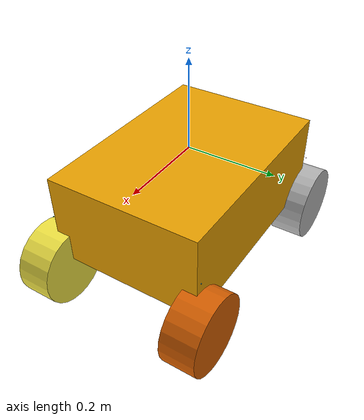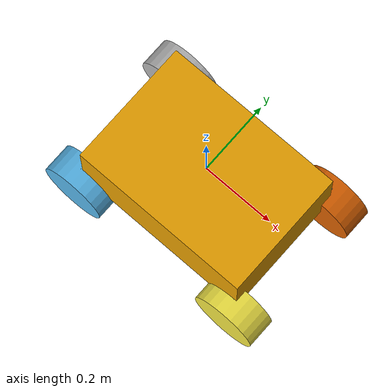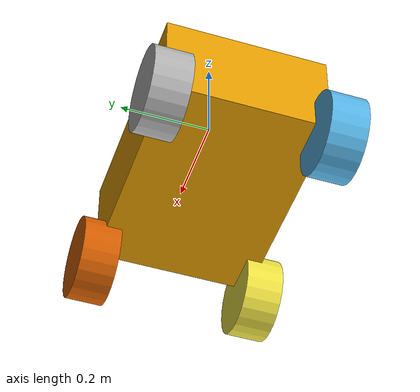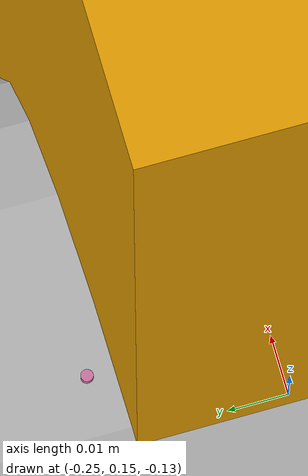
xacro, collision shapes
<?xml version="1.0" encoding="utf-8"?>
<!--
  ranger_mini_v3_sim.xacro
  Top-level xacro for Gazebo Harmonic simulation. Layers
  ros2_control hardware interfaces and the gz_ros2_control
  plugin onto the kinematics-only description package.
-->
<robot name="ranger_mini_v3" xmlns:xacro="http://ros.org/wiki/xacro">

  <xacro:arg name="controller_yaml" default=""/>

  <!-- The kinematic description, untouched. -->
  <xacro:include filename="$(find ranger_mini_v3_description)/urdf/ranger_mini_v3.xacro"/>

  <!--
    Hardware interfaces.
    Steering joints: position interface (commanded by Phase 4 node).
    Wheel joints:    velocity interface (commanded by Phase 4 node).
  -->
  <ros2_control name="ranger_mini_v3_gz_system" type="system">
    <hardware>
      <plugin>gz_ros2_control/GazeboSimSystem</plugin>
    </hardware>

    <xacro:macro name="steering_iface" params="prefix">
      <joint name="${prefix}_steering_joint">
        <command_interface name="position">
          <param name="min">-2.1</param>
          <param name="max"> 2.1</param>
        </command_interface>
        <state_interface name="position"/>
        <state_interface name="velocity"/>
      </joint>
    </xacro:macro>

    <xacro:macro name="wheel_iface" params="prefix">
      <joint name="${prefix}_wheel">
        <command_interface name="velocity">
          <param name="min">-30.0</param>
          <param name="max"> 30.0</param>
        </command_interface>
        <state_interface name="position"/>
        <state_interface name="velocity"/>
      </joint>
    </xacro:macro>

    <xacro:steering_iface prefix="fl"/>
    <xacro:steering_iface prefix="fr"/>
    <xacro:steering_iface prefix="rl"/>
    <xacro:steering_iface prefix="rr"/>

    <xacro:wheel_iface prefix="fl"/>
    <xacro:wheel_iface prefix="fr"/>
    <xacro:wheel_iface prefix="rl"/>
    <xacro:wheel_iface prefix="rr"/>
  </ros2_control>

  <gazebo>
    <plugin filename="gz_ros2_control-system" name="gz_ros2_control::GazeboSimROS2ControlSystem">
      <parameters>$(arg controller_yaml)</parameters>
    </plugin>
  </gazebo>

</robot>

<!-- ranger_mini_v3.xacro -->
<robot name="ranger_mini_v3" xmlns:xacro="http://ros.org/wiki/xacro">

  <xacro:property name="wheelbase_half" value="0.247"/>
  <xacro:property name="track_half"     value="0.182"/>
  <xacro:property name="steer_z"        value="-0.1"/>
  <xacro:property name="wheel_drop"     value="-0.12"/>
  <xacro:property name="wheel_radius"   value="0.09"/>
  <xacro:property name="wheel_width"    value="0.08"/>
  <xacro:property name="wheel_mass"     value="8.0"/>
  <xacro:property name="steer_mass"     value="1.0"/>
  <xacro:property name="steer_limit"    value="2.1"/>
  <xacro:property name="steer_effort"   value="5.0"/>
  <xacro:property name="steer_vel"      value="6.28"/>
  <xacro:property name="mesh_pkg"       value="package://ranger_mini_v3_description/meshes"/>

  <!-- ============================================================
       Base link
       ============================================================ -->
  <link name="base_link">
    <inertial>
      <origin xyz="-0.0242698 -0.0030308 0.0544267" rpy="0 0 0"/>
      <mass value="10.0"/>
      <inertia ixx="0.1354" ixy="0.0" ixz="0.0"
               iyy="0.2417" iyz="0.0" izz="0.3085"/>
    </inertial>
    <visual>
      <origin xyz="0 0 0" rpy="0 0 0"/>
      <geometry>
        <mesh filename="${mesh_pkg}/ranger_base.dae" scale="1000 1000 1000"/>
      </geometry>
    </visual>
    <collision>
      <origin xyz="0 0 -0.1" rpy="0 0 0"/>
      <geometry>
        <box size="0.5 0.35 0.2"/>
      </geometry>
    </collision>
  </link>

  <!-- A common nav convention: base_footprint at ground level under base_link.
       Useful for nav2 and TF consumers that expect it. -->
  <link name="base_footprint"/>
  <joint name="base_footprint_joint" type="fixed">
    <parent link="base_link"/>
    <child  link="base_footprint"/>
    <origin xyz="0 0 ${steer_z + wheel_drop - wheel_radius}" rpy="0 0 0"/>
  </joint>

  <!-- ============================================================
       Macros: one steering hub + one drive wheel per corner.
       ============================================================ -->

  <!-- Steering hub (revolute joint attached to base_link). -->
  <xacro:macro name="steering_hub" params="prefix x y mesh_yaw">
    <link name="${prefix}_steering_wheel_link">
      <inertial>
        <origin xyz="0 0 0.0437" rpy="0 0 0"/>
        <mass value="${steer_mass}"/>
        <inertia ixx="0.006363" ixy="0.0" ixz="0.0"
                 iyy="0.006363" iyz="0.0" izz="0.010465"/>
      </inertial>
      <visual>
        <origin xyz="0 0 0" rpy="0 0 ${mesh_yaw}"/>
        <geometry>
          <mesh filename="${mesh_pkg}/steering_wheel.dae" scale="10 10 10"/>
        </geometry>
      </visual>
      <collision>
        <origin xyz="0 0 0" rpy="0 0 0"/>
        <geometry>
          <cylinder radius="0.001" length="0.001"/>
        </geometry>
      </collision>
    </link>

    <joint name="${prefix}_steering_joint" type="revolute">
      <origin xyz="${x} ${y} ${steer_z}" rpy="0 0 0"/>
      <parent link="base_link"/>
      <child  link="${prefix}_steering_wheel_link"/>
      <!-- Original used axis (0,0,-1); we keep that so positive command =
           CW seen from above, matching the real-driver kinematic model. -->
      <axis xyz="0 0 1"/>
      <limit effort="${steer_effort}" velocity="${steer_vel}"
             lower="${-steer_limit}" upper="${steer_limit}"/>
      <dynamics damping="0.1" friction="0.0"/>
    </joint>
  </xacro:macro>

  <!-- Drive wheel (continuous joint hanging off the steering hub). -->
  <xacro:macro name="drive_wheel" params="prefix mesh_roll">
    <link name="${prefix}_wheel_link">
      <inertial>
        <origin xyz="0 0 0" rpy="0 0 0"/>
        <mass value="${wheel_mass}"/>
        <inertia ixx="0.02047" ixy="0.0" ixz="0.0"
                 iyy="0.02047" iyz="0.0" izz="0.0324"/>
      </inertial>
      <visual>
        <origin xyz="0 0 0" rpy="${mesh_roll} 0 0"/>
        <geometry>
          <mesh filename="${mesh_pkg}/wheel_v3.dae" scale="10 10 10"/>
        </geometry>
      </visual>
      <collision>
        <origin xyz="0 0 -0.005" rpy="1.5707963 0 0"/>
        <geometry>
          <cylinder length="${wheel_width}" radius="${wheel_radius}"/>
        </geometry>
      </collision>
    </link>

    <joint name="${prefix}_wheel" type="continuous">
      <origin xyz="0 0 ${wheel_drop}" rpy="0 0 0"/>
      <parent link="${prefix}_steering_wheel_link"/>
      <child  link="${prefix}_wheel_link"/>
      <axis xyz="0 1 0"/>
      <dynamics damping="0.05" friction="0.0"/>
    </joint>
  </xacro:macro>

  <!-- Front-Right -->
  <xacro:steering_hub prefix="fr" x="${ wheelbase_half}" y="${-track_half}" mesh_yaw="0"/>
  <xacro:drive_wheel  prefix="fr" mesh_roll="3.14"/>

  <!-- Front-Left -->
  <xacro:steering_hub prefix="fl" x="${ wheelbase_half}" y="${ track_half}" mesh_yaw="3.14"/>
  <xacro:drive_wheel  prefix="fl" mesh_roll="0"/>

  <!-- Rear-Left -->
  <xacro:steering_hub prefix="rl" x="${-wheelbase_half}" y="${ track_half}" mesh_yaw="3.14"/>
  <xacro:drive_wheel  prefix="rl" mesh_roll="0"/>

  <!-- Rear-Right  (FIX: original had (-0.23, -0.206); standardized here) -->
  <xacro:steering_hub prefix="rr" x="${-wheelbase_half}" y="${-track_half}" mesh_yaw="0"/>
  <xacro:drive_wheel  prefix="rr" mesh_roll="3.14"/>

</robot>
